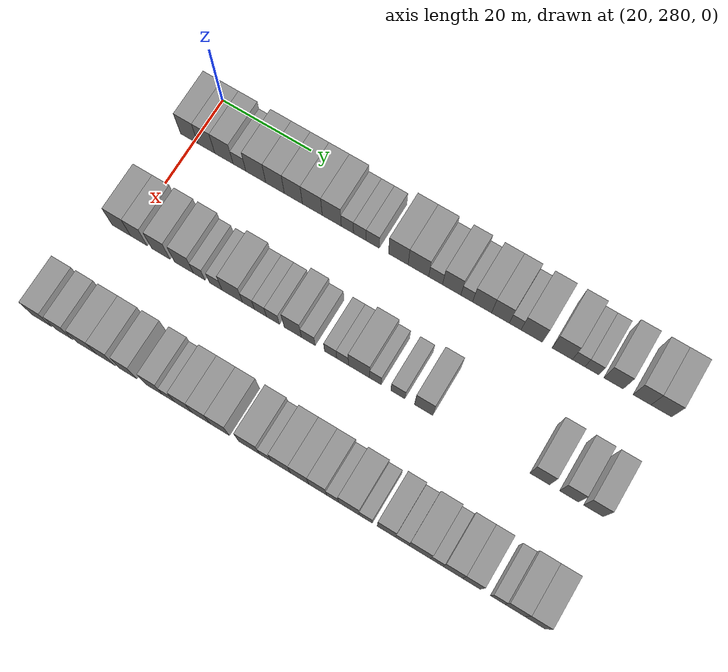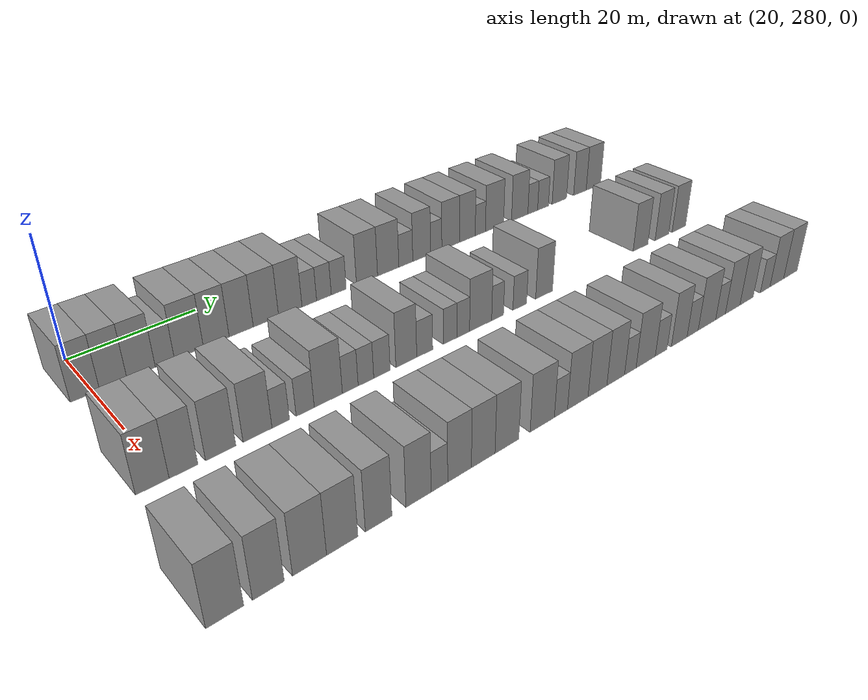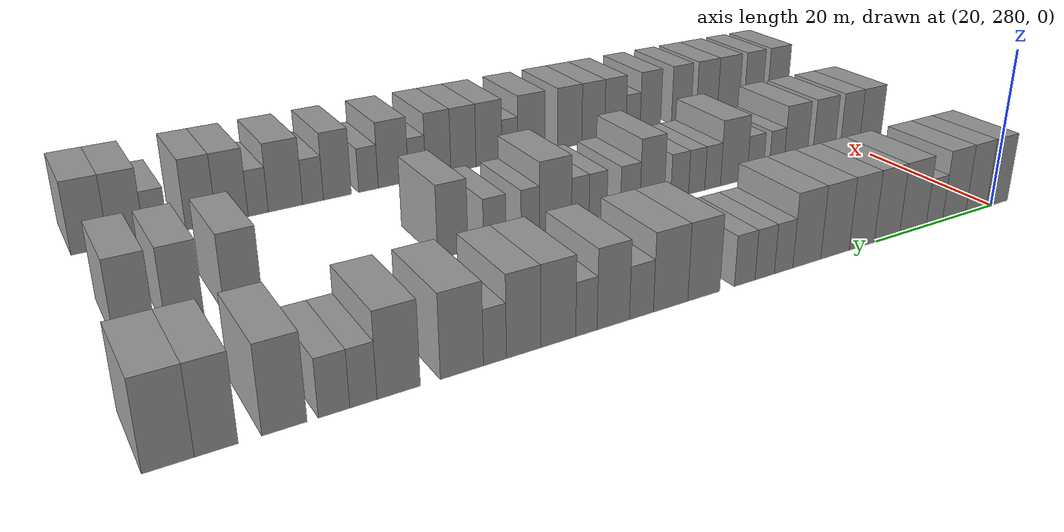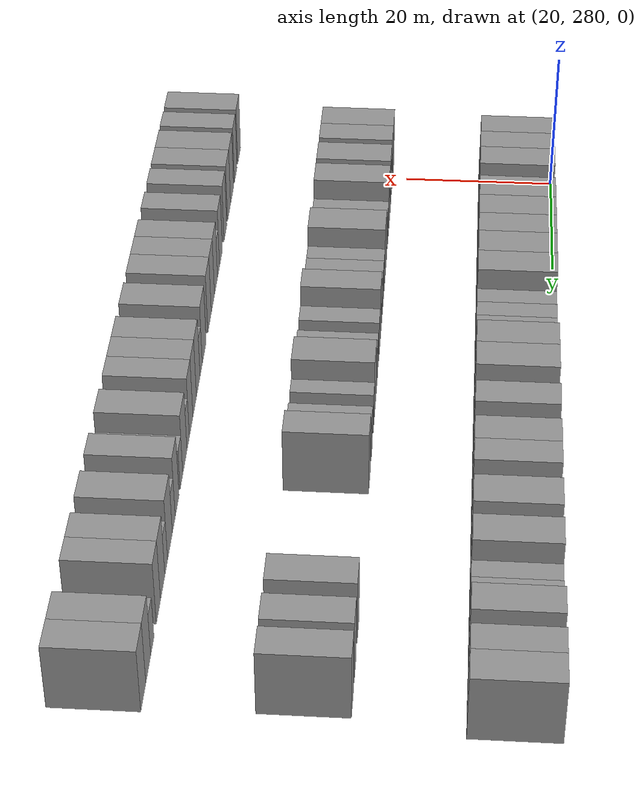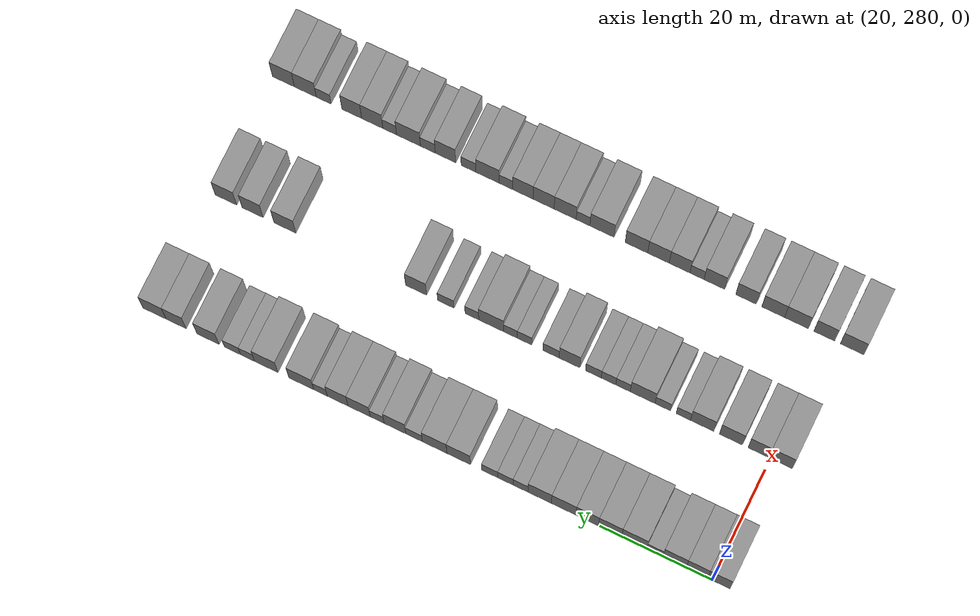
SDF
<sdf version="1.6">
 <world name="default">
  <model name="building_164">
   <static>1</static>
   <pose>25.0000 278.9140 0 0.000000 0.000000 0.000000</pose>
   <link name="link">
    <pose>0 0 4.50 0 0 0</pose>
    <collision name="collision"><geometry><box><size>10.0000 3.9760 9.0000</size></box></geometry></collision>
    <visual name="visual">
     <cast_shadows>0</cast_shadows>
     <geometry><box><size>10.0000 3.9760 9.0000</size></box></geometry>
     <material>
      <script>
       <uri>model://grey_wall/materials/scripts</uri>
       <uri>model://grey_wall/materials/textures</uri>
       <name>vrc/grey_wall</name>
      </script>
     </material>
    </visual>
   </link>
  </model>
  <model name="building_165">
   <static>1</static>
   <pose>25.0000 282.8122 0 0.000000 0.000000 0.000000</pose>
   <link name="link">
    <pose>0 0 4.50 0 0 0</pose>
    <collision name="collision"><geometry><box><size>10.0000 3.8205 9.0000</size></box></geometry></collision>
    <visual name="visual">
     <cast_shadows>0</cast_shadows>
     <geometry><box><size>10.0000 3.8205 9.0000</size></box></geometry>
     <material>
      <script>
       <uri>model://grey_wall/materials/scripts</uri>
       <uri>model://grey_wall/materials/textures</uri>
       <name>vrc/grey_wall</name>
      </script>
     </material>
    </visual>
   </link>
  </model>
  <model name="building_166">
   <static>1</static>
   <pose>25.0000 286.7843 0 0.000000 0.000000 0.000000</pose>
   <link name="link">
    <pose>0 0 4.50 0 0 0</pose>
    <collision name="collision"><geometry><box><size>10.0000 4.1235 9.0000</size></box></geometry></collision>
    <visual name="visual">
     <cast_shadows>0</cast_shadows>
     <geometry><box><size>10.0000 4.1235 9.0000</size></box></geometry>
     <material>
      <script>
       <uri>model://grey_wall/materials/scripts</uri>
       <uri>model://grey_wall/materials/textures</uri>
       <name>vrc/grey_wall</name>
      </script>
     </material>
    </visual>
   </link>
  </model>
  <model name="building_167">
   <static>1</static>
   <pose>25.0000 290.2773 0 0.000000 0.000000 0.000000</pose>
   <link name="link">
    <pose>0 0 3.00 0 0 0</pose>
    <collision name="collision"><geometry><box><size>10.0000 2.8625 6.0000</size></box></geometry></collision>
    <visual name="visual">
     <cast_shadows>0</cast_shadows>
     <geometry><box><size>10.0000 2.8625 6.0000</size></box></geometry>
     <material>
      <script>
       <uri>model://grey_wall/materials/scripts</uri>
       <uri>model://grey_wall/materials/textures</uri>
       <name>vrc/grey_wall</name>
      </script>
     </material>
    </visual>
   </link>
  </model>
  <model name="building_168">
   <static>1</static>
   <pose>25.0000 293.9492 0 0.000000 0.000000 0.000000</pose>
   <link name="link">
    <pose>0 0 4.50 0 0 0</pose>
    <collision name="collision"><geometry><box><size>10.0000 4.4813 9.0000</size></box></geometry></collision>
    <visual name="visual">
     <cast_shadows>0</cast_shadows>
     <geometry><box><size>10.0000 4.4813 9.0000</size></box></geometry>
     <material>
      <script>
       <uri>model://grey_wall/materials/scripts</uri>
       <uri>model://grey_wall/materials/textures</uri>
       <name>vrc/grey_wall</name>
      </script>
     </material>
    </visual>
   </link>
  </model>
  <model name="building_169">
   <static>1</static>
   <pose>25.0000 298.2594 0 0.000000 0.000000 0.000000</pose>
   <link name="link">
    <pose>0 0 4.50 0 0 0</pose>
    <collision name="collision"><geometry><box><size>10.0000 4.1392 9.0000</size></box></geometry></collision>
    <visual name="visual">
     <cast_shadows>0</cast_shadows>
     <geometry><box><size>10.0000 4.1392 9.0000</size></box></geometry>
     <material>
      <script>
       <uri>model://grey_wall/materials/scripts</uri>
       <uri>model://grey_wall/materials/textures</uri>
       <name>vrc/grey_wall</name>
      </script>
     </material>
    </visual>
   </link>
  </model>
  <model name="building_170">
   <static>1</static>
   <pose>25.0000 302.3332 0 0.000000 0.000000 0.000000</pose>
   <link name="link">
    <pose>0 0 4.50 0 0 0</pose>
    <collision name="collision"><geometry><box><size>10.0000 4.0084 9.0000</size></box></geometry></collision>
    <visual name="visual">
     <cast_shadows>0</cast_shadows>
     <geometry><box><size>10.0000 4.0084 9.0000</size></box></geometry>
     <material>
      <script>
       <uri>model://grey_wall/materials/scripts</uri>
       <uri>model://grey_wall/materials/textures</uri>
       <name>vrc/grey_wall</name>
      </script>
     </material>
    </visual>
   </link>
  </model>
  <model name="building_171">
   <static>1</static>
   <pose>25.0000 306.5236 0 0.000000 0.000000 0.000000</pose>
   <link name="link">
    <pose>0 0 4.50 0 0 0</pose>
    <collision name="collision"><geometry><box><size>10.0000 4.3724 9.0000</size></box></geometry></collision>
    <visual name="visual">
     <cast_shadows>0</cast_shadows>
     <geometry><box><size>10.0000 4.3724 9.0000</size></box></geometry>
     <material>
      <script>
       <uri>model://grey_wall/materials/scripts</uri>
       <uri>model://grey_wall/materials/textures</uri>
       <name>vrc/grey_wall</name>
      </script>
     </material>
    </visual>
   </link>
  </model>
  <model name="building_172">
   <static>1</static>
   <pose>25.0000 310.7991 0 0.000000 0.000000 0.000000</pose>
   <link name="link">
    <pose>0 0 4.50 0 0 0</pose>
    <collision name="collision"><geometry><box><size>10.0000 4.1786 9.0000</size></box></geometry></collision>
    <visual name="visual">
     <cast_shadows>0</cast_shadows>
     <geometry><box><size>10.0000 4.1786 9.0000</size></box></geometry>
     <material>
      <script>
       <uri>model://grey_wall/materials/scripts</uri>
       <uri>model://grey_wall/materials/textures</uri>
       <name>vrc/grey_wall</name>
      </script>
     </material>
    </visual>
   </link>
  </model>
  <model name="building_173">
   <static>1</static>
   <pose>25.0000 314.2296 0 0.000000 0.000000 0.000000</pose>
   <link name="link">
    <pose>0 0 3.00 0 0 0</pose>
    <collision name="collision"><geometry><box><size>10.0000 2.6823 6.0000</size></box></geometry></collision>
    <visual name="visual">
     <cast_shadows>0</cast_shadows>
     <geometry><box><size>10.0000 2.6823 6.0000</size></box></geometry>
     <material>
      <script>
       <uri>model://grey_wall/materials/scripts</uri>
       <uri>model://grey_wall/materials/textures</uri>
       <name>vrc/grey_wall</name>
      </script>
     </material>
    </visual>
   </link>
  </model>
  <model name="building_174">
   <static>1</static>
   <pose>25.0000 316.9485 0 0.000000 0.000000 0.000000</pose>
   <link name="link">
    <pose>0 0 3.00 0 0 0</pose>
    <collision name="collision"><geometry><box><size>10.0000 2.7555 6.0000</size></box></geometry></collision>
    <visual name="visual">
     <cast_shadows>0</cast_shadows>
     <geometry><box><size>10.0000 2.7555 6.0000</size></box></geometry>
     <material>
      <script>
       <uri>model://grey_wall/materials/scripts</uri>
       <uri>model://grey_wall/materials/textures</uri>
       <name>vrc/grey_wall</name>
      </script>
     </material>
    </visual>
   </link>
  </model>
  <model name="building_175">
   <static>1</static>
   <pose>25.0000 319.7554 0 0.000000 0.000000 0.000000</pose>
   <link name="link">
    <pose>0 0 3.00 0 0 0</pose>
    <collision name="collision"><geometry><box><size>10.0000 2.8583 6.0000</size></box></geometry></collision>
    <visual name="visual">
     <cast_shadows>0</cast_shadows>
     <geometry><box><size>10.0000 2.8583 6.0000</size></box></geometry>
     <material>
      <script>
       <uri>model://grey_wall/materials/scripts</uri>
       <uri>model://grey_wall/materials/textures</uri>
       <name>vrc/grey_wall</name>
      </script>
     </material>
    </visual>
   </link>
  </model>
  <model name="building_176">
   <static>1</static>
   <pose>25.0000 325.3029 0 0.000000 0.000000 0.000000</pose>
   <link name="link">
    <pose>0 0 4.50 0 0 0</pose>
    <collision name="collision"><geometry><box><size>10.0000 4.2367 9.0000</size></box></geometry></collision>
    <visual name="visual">
     <cast_shadows>0</cast_shadows>
     <geometry><box><size>10.0000 4.2367 9.0000</size></box></geometry>
     <material>
      <script>
       <uri>model://grey_wall/materials/scripts</uri>
       <uri>model://grey_wall/materials/textures</uri>
       <name>vrc/grey_wall</name>
      </script>
     </material>
    </visual>
   </link>
  </model>
  <model name="building_177">
   <static>1</static>
   <pose>25.0000 329.6273 0 0.000000 0.000000 0.000000</pose>
   <link name="link">
    <pose>0 0 4.50 0 0 0</pose>
    <collision name="collision"><geometry><box><size>10.0000 4.4122 9.0000</size></box></geometry></collision>
    <visual name="visual">
     <cast_shadows>0</cast_shadows>
     <geometry><box><size>10.0000 4.4122 9.0000</size></box></geometry>
     <material>
      <script>
       <uri>model://grey_wall/materials/scripts</uri>
       <uri>model://grey_wall/materials/textures</uri>
       <name>vrc/grey_wall</name>
      </script>
     </material>
    </visual>
   </link>
  </model>
  <model name="building_178">
   <static>1</static>
   <pose>25.0000 333.3196 0 0.000000 0.000000 0.000000</pose>
   <link name="link">
    <pose>0 0 3.00 0 0 0</pose>
    <collision name="collision"><geometry><box><size>10.0000 2.9724 6.0000</size></box></geometry></collision>
    <visual name="visual">
     <cast_shadows>0</cast_shadows>
     <geometry><box><size>10.0000 2.9724 6.0000</size></box></geometry>
     <material>
      <script>
       <uri>model://grey_wall/materials/scripts</uri>
       <uri>model://grey_wall/materials/textures</uri>
       <name>vrc/grey_wall</name>
      </script>
     </material>
    </visual>
   </link>
  </model>
  <model name="building_179">
   <static>1</static>
   <pose>25.0000 336.7559 0 0.000000 0.000000 0.000000</pose>
   <link name="link">
    <pose>0 0 4.50 0 0 0</pose>
    <collision name="collision"><geometry><box><size>10.0000 3.9002 9.0000</size></box></geometry></collision>
    <visual name="visual">
     <cast_shadows>0</cast_shadows>
     <geometry><box><size>10.0000 3.9002 9.0000</size></box></geometry>
     <material>
      <script>
       <uri>model://grey_wall/materials/scripts</uri>
       <uri>model://grey_wall/materials/textures</uri>
       <name>vrc/grey_wall</name>
      </script>
     </material>
    </visual>
   </link>
  </model>
  <model name="building_180">
   <static>1</static>
   <pose>25.0000 339.9572 0 0.000000 0.000000 0.000000</pose>
   <link name="link">
    <pose>0 0 3.00 0 0 0</pose>
    <collision name="collision"><geometry><box><size>10.0000 2.5024 6.0000</size></box></geometry></collision>
    <visual name="visual">
     <cast_shadows>0</cast_shadows>
     <geometry><box><size>10.0000 2.5024 6.0000</size></box></geometry>
     <material>
      <script>
       <uri>model://grey_wall/materials/scripts</uri>
       <uri>model://grey_wall/materials/textures</uri>
       <name>vrc/grey_wall</name>
      </script>
     </material>
    </visual>
   </link>
  </model>
  <model name="building_181">
   <static>1</static>
   <pose>25.0000 343.2161 0 0.000000 0.000000 0.000000</pose>
   <link name="link">
    <pose>0 0 4.50 0 0 0</pose>
    <collision name="collision"><geometry><box><size>10.0000 4.0153 9.0000</size></box></geometry></collision>
    <visual name="visual">
     <cast_shadows>0</cast_shadows>
     <geometry><box><size>10.0000 4.0153 9.0000</size></box></geometry>
     <material>
      <script>
       <uri>model://grey_wall/materials/scripts</uri>
       <uri>model://grey_wall/materials/textures</uri>
       <name>vrc/grey_wall</name>
      </script>
     </material>
    </visual>
   </link>
  </model>
  <model name="building_182">
   <static>1</static>
   <pose>25.0000 347.0987 0 0.000000 0.000000 0.000000</pose>
   <link name="link">
    <pose>0 0 4.50 0 0 0</pose>
    <collision name="collision"><geometry><box><size>10.0000 3.7500 9.0000</size></box></geometry></collision>
    <visual name="visual">
     <cast_shadows>0</cast_shadows>
     <geometry><box><size>10.0000 3.7500 9.0000</size></box></geometry>
     <material>
      <script>
       <uri>model://grey_wall/materials/scripts</uri>
       <uri>model://grey_wall/materials/textures</uri>
       <name>vrc/grey_wall</name>
      </script>
     </material>
    </visual>
   </link>
  </model>
  <model name="building_183">
   <static>1</static>
   <pose>25.0000 350.1979 0 0.000000 0.000000 0.000000</pose>
   <link name="link">
    <pose>0 0 3.00 0 0 0</pose>
    <collision name="collision"><geometry><box><size>10.0000 2.4484 6.0000</size></box></geometry></collision>
    <visual name="visual">
     <cast_shadows>0</cast_shadows>
     <geometry><box><size>10.0000 2.4484 6.0000</size></box></geometry>
     <material>
      <script>
       <uri>model://grey_wall/materials/scripts</uri>
       <uri>model://grey_wall/materials/textures</uri>
       <name>vrc/grey_wall</name>
      </script>
     </material>
    </visual>
   </link>
  </model>
  <model name="building_184">
   <static>1</static>
   <pose>25.0000 353.6634 0 0.000000 0.000000 0.000000</pose>
   <link name="link">
    <pose>0 0 4.50 0 0 0</pose>
    <collision name="collision"><geometry><box><size>10.0000 4.4824 9.0000</size></box></geometry></collision>
    <visual name="visual">
     <cast_shadows>0</cast_shadows>
     <geometry><box><size>10.0000 4.4824 9.0000</size></box></geometry>
     <material>
      <script>
       <uri>model://grey_wall/materials/scripts</uri>
       <uri>model://grey_wall/materials/textures</uri>
       <name>vrc/grey_wall</name>
      </script>
     </material>
    </visual>
   </link>
  </model>
  <model name="building_185">
   <static>1</static>
   <pose>25.0000 360.0152 0 0.000000 0.000000 0.000000</pose>
   <link name="link">
    <pose>0 0 4.50 0 0 0</pose>
    <collision name="collision"><geometry><box><size>10.0000 4.2213 9.0000</size></box></geometry></collision>
    <visual name="visual">
     <cast_shadows>0</cast_shadows>
     <geometry><box><size>10.0000 4.2213 9.0000</size></box></geometry>
     <material>
      <script>
       <uri>model://grey_wall/materials/scripts</uri>
       <uri>model://grey_wall/materials/textures</uri>
       <name>vrc/grey_wall</name>
      </script>
     </material>
    </visual>
   </link>
  </model>
  <model name="building_186">
   <static>1</static>
   <pose>25.0000 363.4134 0 0.000000 0.000000 0.000000</pose>
   <link name="link">
    <pose>0 0 3.00 0 0 0</pose>
    <collision name="collision"><geometry><box><size>10.0000 2.5751 6.0000</size></box></geometry></collision>
    <visual name="visual">
     <cast_shadows>0</cast_shadows>
     <geometry><box><size>10.0000 2.5751 6.0000</size></box></geometry>
     <material>
      <script>
       <uri>model://grey_wall/materials/scripts</uri>
       <uri>model://grey_wall/materials/textures</uri>
       <name>vrc/grey_wall</name>
      </script>
     </material>
    </visual>
   </link>
  </model>
  <model name="building_187">
   <static>1</static>
   <pose>25.0000 366.1536 0 0.000000 0.000000 0.000000</pose>
   <link name="link">
    <pose>0 0 3.00 0 0 0</pose>
    <collision name="collision"><geometry><box><size>10.0000 2.9054 6.0000</size></box></geometry></collision>
    <visual name="visual">
     <cast_shadows>0</cast_shadows>
     <geometry><box><size>10.0000 2.9054 6.0000</size></box></geometry>
     <material>
      <script>
       <uri>model://grey_wall/materials/scripts</uri>
       <uri>model://grey_wall/materials/textures</uri>
       <name>vrc/grey_wall</name>
      </script>
     </material>
    </visual>
   </link>
  </model>
  <model name="building_188">
   <static>1</static>
   <pose>25.0000 370.6013 0 0.000000 0.000000 0.000000</pose>
   <link name="link">
    <pose>0 0 4.50 0 0 0</pose>
    <collision name="collision"><geometry><box><size>10.0000 3.9900 9.0000</size></box></geometry></collision>
    <visual name="visual">
     <cast_shadows>0</cast_shadows>
     <geometry><box><size>10.0000 3.9900 9.0000</size></box></geometry>
     <material>
      <script>
       <uri>model://grey_wall/materials/scripts</uri>
       <uri>model://grey_wall/materials/textures</uri>
       <name>vrc/grey_wall</name>
      </script>
     </material>
    </visual>
   </link>
  </model>
  <model name="building_189">
   <static>1</static>
   <pose>25.0000 376.4126 0 0.000000 0.000000 0.000000</pose>
   <link name="link">
    <pose>0 0 4.50 0 0 0</pose>
    <collision name="collision"><geometry><box><size>10.0000 3.6328 9.0000</size></box></geometry></collision>
    <visual name="visual">
     <cast_shadows>0</cast_shadows>
     <geometry><box><size>10.0000 3.6328 9.0000</size></box></geometry>
     <material>
      <script>
       <uri>model://grey_wall/materials/scripts</uri>
       <uri>model://grey_wall/materials/textures</uri>
       <name>vrc/grey_wall</name>
      </script>
     </material>
    </visual>
   </link>
  </model>
  <model name="building_190">
   <static>1</static>
   <pose>25.0000 380.3347 0 0.000000 0.000000 0.000000</pose>
   <link name="link">
    <pose>0 0 4.50 0 0 0</pose>
    <collision name="collision"><geometry><box><size>10.0000 4.2114 9.0000</size></box></geometry></collision>
    <visual name="visual">
     <cast_shadows>0</cast_shadows>
     <geometry><box><size>10.0000 4.2114 9.0000</size></box></geometry>
     <material>
      <script>
       <uri>model://grey_wall/materials/scripts</uri>
       <uri>model://grey_wall/materials/textures</uri>
       <name>vrc/grey_wall</name>
      </script>
     </material>
    </visual>
   </link>
  </model>
  <model name="building_362">
   <static>1</static>
   <pose>47.0000 278.2323 0 0.000000 0.000000 0.000000</pose>
   <link name="link">
    <pose>0 0 4.50 0 0 0</pose>
    <collision name="collision"><geometry><box><size>10.0000 4.1802 9.0000</size></box></geometry></collision>
    <visual name="visual">
     <cast_shadows>0</cast_shadows>
     <geometry><box><size>10.0000 4.1802 9.0000</size></box></geometry>
     <material>
      <script>
       <uri>model://grey_wall/materials/scripts</uri>
       <uri>model://grey_wall/materials/textures</uri>
       <name>vrc/grey_wall</name>
      </script>
     </material>
    </visual>
   </link>
  </model>
  <model name="building_363">
   <static>1</static>
   <pose>47.0000 282.1758 0 0.000000 0.000000 0.000000</pose>
   <link name="link">
    <pose>0 0 4.50 0 0 0</pose>
    <collision name="collision"><geometry><box><size>10.0000 3.7068 9.0000</size></box></geometry></collision>
    <visual name="visual">
     <cast_shadows>0</cast_shadows>
     <geometry><box><size>10.0000 3.7068 9.0000</size></box></geometry>
     <material>
      <script>
       <uri>model://grey_wall/materials/scripts</uri>
       <uri>model://grey_wall/materials/textures</uri>
       <name>vrc/grey_wall</name>
      </script>
     </material>
    </visual>
   </link>
  </model>
  <model name="building_364">
   <static>1</static>
   <pose>47.0000 287.0910 0 0.000000 0.000000 0.000000</pose>
   <link name="link">
    <pose>0 0 4.50 0 0 0</pose>
    <collision name="collision"><geometry><box><size>10.0000 4.1236 9.0000</size></box></geometry></collision>
    <visual name="visual">
     <cast_shadows>0</cast_shadows>
     <geometry><box><size>10.0000 4.1236 9.0000</size></box></geometry>
     <material>
      <script>
       <uri>model://grey_wall/materials/scripts</uri>
       <uri>model://grey_wall/materials/textures</uri>
       <name>vrc/grey_wall</name>
      </script>
     </material>
    </visual>
   </link>
  </model>
  <model name="building_365">
   <static>1</static>
   <pose>47.0000 292.2251 0 0.000000 0.000000 0.000000</pose>
   <link name="link">
    <pose>0 0 4.50 0 0 0</pose>
    <collision name="collision"><geometry><box><size>10.0000 4.1446 9.0000</size></box></geometry></collision>
    <visual name="visual">
     <cast_shadows>0</cast_shadows>
     <geometry><box><size>10.0000 4.1446 9.0000</size></box></geometry>
     <material>
      <script>
       <uri>model://grey_wall/materials/scripts</uri>
       <uri>model://grey_wall/materials/textures</uri>
       <name>vrc/grey_wall</name>
      </script>
     </material>
    </visual>
   </link>
  </model>
  <model name="building_366">
   <static>1</static>
   <pose>47.0000 295.5887 0 0.000000 0.000000 0.000000</pose>
   <link name="link">
    <pose>0 0 3.00 0 0 0</pose>
    <collision name="collision"><geometry><box><size>10.0000 2.5825 6.0000</size></box></geometry></collision>
    <visual name="visual">
     <cast_shadows>0</cast_shadows>
     <geometry><box><size>10.0000 2.5825 6.0000</size></box></geometry>
     <material>
      <script>
       <uri>model://grey_wall/materials/scripts</uri>
       <uri>model://grey_wall/materials/textures</uri>
       <name>vrc/grey_wall</name>
      </script>
     </material>
    </visual>
   </link>
  </model>
  <model name="building_367">
   <static>1</static>
   <pose>47.0000 299.2667 0 0.000000 0.000000 0.000000</pose>
   <link name="link">
    <pose>0 0 3.00 0 0 0</pose>
    <collision name="collision"><geometry><box><size>10.0000 2.7736 6.0000</size></box></geometry></collision>
    <visual name="visual">
     <cast_shadows>0</cast_shadows>
     <geometry><box><size>10.0000 2.7736 6.0000</size></box></geometry>
     <material>
      <script>
       <uri>model://grey_wall/materials/scripts</uri>
       <uri>model://grey_wall/materials/textures</uri>
       <name>vrc/grey_wall</name>
      </script>
     </material>
    </visual>
   </link>
  </model>
  <model name="building_368">
   <static>1</static>
   <pose>47.0000 302.8865 0 0.000000 0.000000 0.000000</pose>
   <link name="link">
    <pose>0 0 4.50 0 0 0</pose>
    <collision name="collision"><geometry><box><size>10.0000 4.4659 9.0000</size></box></geometry></collision>
    <visual name="visual">
     <cast_shadows>0</cast_shadows>
     <geometry><box><size>10.0000 4.4659 9.0000</size></box></geometry>
     <material>
      <script>
       <uri>model://grey_wall/materials/scripts</uri>
       <uri>model://grey_wall/materials/textures</uri>
       <name>vrc/grey_wall</name>
      </script>
     </material>
    </visual>
   </link>
  </model>
  <model name="building_369">
   <static>1</static>
   <pose>47.0000 306.4107 0 0.000000 0.000000 0.000000</pose>
   <link name="link">
    <pose>0 0 3.00 0 0 0</pose>
    <collision name="collision"><geometry><box><size>10.0000 2.5827 6.0000</size></box></geometry></collision>
    <visual name="visual">
     <cast_shadows>0</cast_shadows>
     <geometry><box><size>10.0000 2.5827 6.0000</size></box></geometry>
     <material>
      <script>
       <uri>model://grey_wall/materials/scripts</uri>
       <uri>model://grey_wall/materials/textures</uri>
       <name>vrc/grey_wall</name>
      </script>
     </material>
    </visual>
   </link>
  </model>
  <model name="building_370">
   <static>1</static>
   <pose>47.0000 309.0109 0 0.000000 0.000000 0.000000</pose>
   <link name="link">
    <pose>0 0 3.00 0 0 0</pose>
    <collision name="collision"><geometry><box><size>10.0000 2.6177 6.0000</size></box></geometry></collision>
    <visual name="visual">
     <cast_shadows>0</cast_shadows>
     <geometry><box><size>10.0000 2.6177 6.0000</size></box></geometry>
     <material>
      <script>
       <uri>model://grey_wall/materials/scripts</uri>
       <uri>model://grey_wall/materials/textures</uri>
       <name>vrc/grey_wall</name>
      </script>
     </material>
    </visual>
   </link>
  </model>
  <model name="building_371">
   <static>1</static>
   <pose>47.0000 311.7317 0 0.000000 0.000000 0.000000</pose>
   <link name="link">
    <pose>0 0 3.00 0 0 0</pose>
    <collision name="collision"><geometry><box><size>10.0000 2.8239 6.0000</size></box></geometry></collision>
    <visual name="visual">
     <cast_shadows>0</cast_shadows>
     <geometry><box><size>10.0000 2.8239 6.0000</size></box></geometry>
     <material>
      <script>
       <uri>model://grey_wall/materials/scripts</uri>
       <uri>model://grey_wall/materials/textures</uri>
       <name>vrc/grey_wall</name>
      </script>
     </material>
    </visual>
   </link>
  </model>
  <model name="building_372">
   <static>1</static>
   <pose>47.0000 316.0126 0 0.000000 0.000000 0.000000</pose>
   <link name="link">
    <pose>0 0 4.50 0 0 0</pose>
    <collision name="collision"><geometry><box><size>10.0000 3.7378 9.0000</size></box></geometry></collision>
    <visual name="visual">
     <cast_shadows>0</cast_shadows>
     <geometry><box><size>10.0000 3.7378 9.0000</size></box></geometry>
     <material>
      <script>
       <uri>model://grey_wall/materials/scripts</uri>
       <uri>model://grey_wall/materials/textures</uri>
       <name>vrc/grey_wall</name>
      </script>
     </material>
    </visual>
   </link>
  </model>
  <model name="building_373">
   <static>1</static>
   <pose>47.0000 319.3524 0 0.000000 0.000000 0.000000</pose>
   <link name="link">
    <pose>0 0 3.00 0 0 0</pose>
    <collision name="collision"><geometry><box><size>10.0000 2.9419 6.0000</size></box></geometry></collision>
    <visual name="visual">
     <cast_shadows>0</cast_shadows>
     <geometry><box><size>10.0000 2.9419 6.0000</size></box></geometry>
     <material>
      <script>
       <uri>model://grey_wall/materials/scripts</uri>
       <uri>model://grey_wall/materials/textures</uri>
       <name>vrc/grey_wall</name>
      </script>
     </material>
    </visual>
   </link>
  </model>
  <model name="building_374">
   <static>1</static>
   <pose>47.0000 324.1175 0 0.000000 0.000000 0.000000</pose>
   <link name="link">
    <pose>0 0 3.00 0 0 0</pose>
    <collision name="collision"><geometry><box><size>10.0000 2.5882 6.0000</size></box></geometry></collision>
    <visual name="visual">
     <cast_shadows>0</cast_shadows>
     <geometry><box><size>10.0000 2.5882 6.0000</size></box></geometry>
     <material>
      <script>
       <uri>model://grey_wall/materials/scripts</uri>
       <uri>model://grey_wall/materials/textures</uri>
       <name>vrc/grey_wall</name>
      </script>
     </material>
    </visual>
   </link>
  </model>
  <model name="building_375">
   <static>1</static>
   <pose>47.0000 326.6675 0 0.000000 0.000000 0.000000</pose>
   <link name="link">
    <pose>0 0 3.00 0 0 0</pose>
    <collision name="collision"><geometry><box><size>10.0000 2.5119 6.0000</size></box></geometry></collision>
    <visual name="visual">
     <cast_shadows>0</cast_shadows>
     <geometry><box><size>10.0000 2.5119 6.0000</size></box></geometry>
     <material>
      <script>
       <uri>model://grey_wall/materials/scripts</uri>
       <uri>model://grey_wall/materials/textures</uri>
       <name>vrc/grey_wall</name>
      </script>
     </material>
    </visual>
   </link>
  </model>
  <model name="building_376">
   <static>1</static>
   <pose>47.0000 330.1559 0 0.000000 0.000000 0.000000</pose>
   <link name="link">
    <pose>0 0 4.50 0 0 0</pose>
    <collision name="collision"><geometry><box><size>10.0000 4.4648 9.0000</size></box></geometry></collision>
    <visual name="visual">
     <cast_shadows>0</cast_shadows>
     <geometry><box><size>10.0000 4.4648 9.0000</size></box></geometry>
     <material>
      <script>
       <uri>model://grey_wall/materials/scripts</uri>
       <uri>model://grey_wall/materials/textures</uri>
       <name>vrc/grey_wall</name>
      </script>
     </material>
    </visual>
   </link>
  </model>
  <model name="building_377">
   <static>1</static>
   <pose>47.0000 333.6206 0 0.000000 0.000000 0.000000</pose>
   <link name="link">
    <pose>0 0 3.00 0 0 0</pose>
    <collision name="collision"><geometry><box><size>10.0000 2.4645 6.0000</size></box></geometry></collision>
    <visual name="visual">
     <cast_shadows>0</cast_shadows>
     <geometry><box><size>10.0000 2.4645 6.0000</size></box></geometry>
     <material>
      <script>
       <uri>model://grey_wall/materials/scripts</uri>
       <uri>model://grey_wall/materials/textures</uri>
       <name>vrc/grey_wall</name>
      </script>
     </material>
    </visual>
   </link>
  </model>
  <model name="building_378">
   <static>1</static>
   <pose>47.0000 338.3340 0 0.000000 0.000000 0.000000</pose>
   <link name="link">
    <pose>0 0 3.00 0 0 0</pose>
    <collision name="collision"><geometry><box><size>10.0000 2.9623 6.0000</size></box></geometry></collision>
    <visual name="visual">
     <cast_shadows>0</cast_shadows>
     <geometry><box><size>10.0000 2.9623 6.0000</size></box></geometry>
     <material>
      <script>
       <uri>model://grey_wall/materials/scripts</uri>
       <uri>model://grey_wall/materials/textures</uri>
       <name>vrc/grey_wall</name>
      </script>
     </material>
    </visual>
   </link>
  </model>
  <model name="building_379">
   <static>1</static>
   <pose>47.0000 343.7207 0 0.000000 0.000000 0.000000</pose>
   <link name="link">
    <pose>0 0 4.50 0 0 0</pose>
    <collision name="collision"><geometry><box><size>10.0000 3.8110 9.0000</size></box></geometry></collision>
    <visual name="visual">
     <cast_shadows>0</cast_shadows>
     <geometry><box><size>10.0000 3.8110 9.0000</size></box></geometry>
     <material>
      <script>
       <uri>model://grey_wall/materials/scripts</uri>
       <uri>model://grey_wall/materials/textures</uri>
       <name>vrc/grey_wall</name>
      </script>
     </material>
    </visual>
   </link>
  </model>
  <model name="building_380">
   <static>1</static>
   <pose>47.0000 367.6133 0 0.000000 0.000000 0.000000</pose>
   <link name="link">
    <pose>0 0 4.50 0 0 0</pose>
    <collision name="collision"><geometry><box><size>10.0000 3.9914 9.0000</size></box></geometry></collision>
    <visual name="visual">
     <cast_shadows>0</cast_shadows>
     <geometry><box><size>10.0000 3.9914 9.0000</size></box></geometry>
     <material>
      <script>
       <uri>model://grey_wall/materials/scripts</uri>
       <uri>model://grey_wall/materials/textures</uri>
       <name>vrc/grey_wall</name>
      </script>
     </material>
    </visual>
   </link>
  </model>
  <model name="building_381">
   <static>1</static>
   <pose>47.0000 373.5285 0 0.000000 0.000000 0.000000</pose>
   <link name="link">
    <pose>0 0 4.50 0 0 0</pose>
    <collision name="collision"><geometry><box><size>10.0000 3.8389 9.0000</size></box></geometry></collision>
    <visual name="visual">
     <cast_shadows>0</cast_shadows>
     <geometry><box><size>10.0000 3.8389 9.0000</size></box></geometry>
     <material>
      <script>
       <uri>model://grey_wall/materials/scripts</uri>
       <uri>model://grey_wall/materials/textures</uri>
       <name>vrc/grey_wall</name>
      </script>
     </material>
    </visual>
   </link>
  </model>
  <model name="building_382">
   <static>1</static>
   <pose>47.0000 378.4087 0 0.000000 0.000000 0.000000</pose>
   <link name="link">
    <pose>0 0 4.50 0 0 0</pose>
    <collision name="collision"><geometry><box><size>10.0000 3.9216 9.0000</size></box></geometry></collision>
    <visual name="visual">
     <cast_shadows>0</cast_shadows>
     <geometry><box><size>10.0000 3.9216 9.0000</size></box></geometry>
     <material>
      <script>
       <uri>model://grey_wall/materials/scripts</uri>
       <uri>model://grey_wall/materials/textures</uri>
       <name>vrc/grey_wall</name>
      </script>
     </material>
    </visual>
   </link>
  </model>
  <model name="building_537">
   <static>1</static>
   <pose>69.0000 275.6578 0 0.000000 0.000000 0.000000</pose>
   <link name="link">
    <pose>0 0 4.50 0 0 0</pose>
    <collision name="collision"><geometry><box><size>10.0000 4.2117 9.0000</size></box></geometry></collision>
    <visual name="visual">
     <cast_shadows>0</cast_shadows>
     <geometry><box><size>10.0000 4.2117 9.0000</size></box></geometry>
     <material>
      <script>
       <uri>model://grey_wall/materials/scripts</uri>
       <uri>model://grey_wall/materials/textures</uri>
       <name>vrc/grey_wall</name>
      </script>
     </material>
    </visual>
   </link>
  </model>
  <model name="building_538">
   <static>1</static>
   <pose>69.0000 280.6283 0 0.000000 0.000000 0.000000</pose>
   <link name="link">
    <pose>0 0 4.50 0 0 0</pose>
    <collision name="collision"><geometry><box><size>10.0000 3.7292 9.0000</size></box></geometry></collision>
    <visual name="visual">
     <cast_shadows>0</cast_shadows>
     <geometry><box><size>10.0000 3.7292 9.0000</size></box></geometry>
     <material>
      <script>
       <uri>model://grey_wall/materials/scripts</uri>
       <uri>model://grey_wall/materials/textures</uri>
       <name>vrc/grey_wall</name>
      </script>
     </material>
    </visual>
   </link>
  </model>
  <model name="building_539">
   <static>1</static>
   <pose>69.0000 285.6185 0 0.000000 0.000000 0.000000</pose>
   <link name="link">
    <pose>0 0 4.50 0 0 0</pose>
    <collision name="collision"><geometry><box><size>10.0000 4.2511 9.0000</size></box></geometry></collision>
    <visual name="visual">
     <cast_shadows>0</cast_shadows>
     <geometry><box><size>10.0000 4.2511 9.0000</size></box></geometry>
     <material>
      <script>
       <uri>model://grey_wall/materials/scripts</uri>
       <uri>model://grey_wall/materials/textures</uri>
       <name>vrc/grey_wall</name>
      </script>
     </material>
    </visual>
   </link>
  </model>
  <model name="building_540">
   <static>1</static>
   <pose>69.0000 289.7958 0 0.000000 0.000000 0.000000</pose>
   <link name="link">
    <pose>0 0 4.50 0 0 0</pose>
    <collision name="collision"><geometry><box><size>10.0000 4.1037 9.0000</size></box></geometry></collision>
    <visual name="visual">
     <cast_shadows>0</cast_shadows>
     <geometry><box><size>10.0000 4.1037 9.0000</size></box></geometry>
     <material>
      <script>
       <uri>model://grey_wall/materials/scripts</uri>
       <uri>model://grey_wall/materials/textures</uri>
       <name>vrc/grey_wall</name>
      </script>
     </material>
    </visual>
   </link>
  </model>
  <model name="building_541">
   <static>1</static>
   <pose>69.0000 294.6865 0 0.000000 0.000000 0.000000</pose>
   <link name="link">
    <pose>0 0 4.50 0 0 0</pose>
    <collision name="collision"><geometry><box><size>10.0000 3.6777 9.0000</size></box></geometry></collision>
    <visual name="visual">
     <cast_shadows>0</cast_shadows>
     <geometry><box><size>10.0000 3.6777 9.0000</size></box></geometry>
     <material>
      <script>
       <uri>model://grey_wall/materials/scripts</uri>
       <uri>model://grey_wall/materials/textures</uri>
       <name>vrc/grey_wall</name>
      </script>
     </material>
    </visual>
   </link>
  </model>
  <model name="building_542">
   <static>1</static>
   <pose>69.0000 300.3839 0 0.000000 0.000000 0.000000</pose>
   <link name="link">
    <pose>0 0 4.50 0 0 0</pose>
    <collision name="collision"><geometry><box><size>10.0000 3.7170 9.0000</size></box></geometry></collision>
    <visual name="visual">
     <cast_shadows>0</cast_shadows>
     <geometry><box><size>10.0000 3.7170 9.0000</size></box></geometry>
     <material>
      <script>
       <uri>model://grey_wall/materials/scripts</uri>
       <uri>model://grey_wall/materials/textures</uri>
       <name>vrc/grey_wall</name>
      </script>
     </material>
    </visual>
   </link>
  </model>
  <model name="building_543">
   <static>1</static>
   <pose>69.0000 303.5073 0 0.000000 0.000000 0.000000</pose>
   <link name="link">
    <pose>0 0 3.00 0 0 0</pose>
    <collision name="collision"><geometry><box><size>10.0000 2.5298 6.0000</size></box></geometry></collision>
    <visual name="visual">
     <cast_shadows>0</cast_shadows>
     <geometry><box><size>10.0000 2.5298 6.0000</size></box></geometry>
     <material>
      <script>
       <uri>model://grey_wall/materials/scripts</uri>
       <uri>model://grey_wall/materials/textures</uri>
       <name>vrc/grey_wall</name>
      </script>
     </material>
    </visual>
   </link>
  </model>
  <model name="building_544">
   <static>1</static>
   <pose>69.0000 306.6435 0 0.000000 0.000000 0.000000</pose>
   <link name="link">
    <pose>0 0 4.50 0 0 0</pose>
    <collision name="collision"><geometry><box><size>10.0000 3.7425 9.0000</size></box></geometry></collision>
    <visual name="visual">
     <cast_shadows>0</cast_shadows>
     <geometry><box><size>10.0000 3.7425 9.0000</size></box></geometry>
     <material>
      <script>
       <uri>model://grey_wall/materials/scripts</uri>
       <uri>model://grey_wall/materials/textures</uri>
       <name>vrc/grey_wall</name>
      </script>
     </material>
    </visual>
   </link>
  </model>
  <model name="building_545">
   <static>1</static>
   <pose>69.0000 310.4552 0 0.000000 0.000000 0.000000</pose>
   <link name="link">
    <pose>0 0 4.50 0 0 0</pose>
    <collision name="collision"><geometry><box><size>10.0000 3.8809 9.0000</size></box></geometry></collision>
    <visual name="visual">
     <cast_shadows>0</cast_shadows>
     <geometry><box><size>10.0000 3.8809 9.0000</size></box></geometry>
     <material>
      <script>
       <uri>model://grey_wall/materials/scripts</uri>
       <uri>model://grey_wall/materials/textures</uri>
       <name>vrc/grey_wall</name>
      </script>
     </material>
    </visual>
   </link>
  </model>
  <model name="building_546">
   <static>1</static>
   <pose>69.0000 314.4306 0 0.000000 0.000000 0.000000</pose>
   <link name="link">
    <pose>0 0 4.50 0 0 0</pose>
    <collision name="collision"><geometry><box><size>10.0000 4.0698 9.0000</size></box></geometry></collision>
    <visual name="visual">
     <cast_shadows>0</cast_shadows>
     <geometry><box><size>10.0000 4.0698 9.0000</size></box></geometry>
     <material>
      <script>
       <uri>model://grey_wall/materials/scripts</uri>
       <uri>model://grey_wall/materials/textures</uri>
       <name>vrc/grey_wall</name>
      </script>
     </material>
    </visual>
   </link>
  </model>
  <model name="building_547">
   <static>1</static>
   <pose>69.0000 320.6702 0 0.000000 0.000000 0.000000</pose>
   <link name="link">
    <pose>0 0 4.50 0 0 0</pose>
    <collision name="collision"><geometry><box><size>10.0000 4.4095 9.0000</size></box></geometry></collision>
    <visual name="visual">
     <cast_shadows>0</cast_shadows>
     <geometry><box><size>10.0000 4.4095 9.0000</size></box></geometry>
     <material>
      <script>
       <uri>model://grey_wall/materials/scripts</uri>
       <uri>model://grey_wall/materials/textures</uri>
       <name>vrc/grey_wall</name>
      </script>
     </material>
    </visual>
   </link>
  </model>
  <model name="building_548">
   <static>1</static>
   <pose>69.0000 324.1139 0 0.000000 0.000000 0.000000</pose>
   <link name="link">
    <pose>0 0 3.00 0 0 0</pose>
    <collision name="collision"><geometry><box><size>10.0000 2.4778 6.0000</size></box></geometry></collision>
    <visual name="visual">
     <cast_shadows>0</cast_shadows>
     <geometry><box><size>10.0000 2.4778 6.0000</size></box></geometry>
     <material>
      <script>
       <uri>model://grey_wall/materials/scripts</uri>
       <uri>model://grey_wall/materials/textures</uri>
       <name>vrc/grey_wall</name>
      </script>
     </material>
    </visual>
   </link>
  </model>
  <model name="building_549">
   <static>1</static>
   <pose>69.0000 327.3515 0 0.000000 0.000000 0.000000</pose>
   <link name="link">
    <pose>0 0 4.50 0 0 0</pose>
    <collision name="collision"><geometry><box><size>10.0000 3.9974 9.0000</size></box></geometry></collision>
    <visual name="visual">
     <cast_shadows>0</cast_shadows>
     <geometry><box><size>10.0000 3.9974 9.0000</size></box></geometry>
     <material>
      <script>
       <uri>model://grey_wall/materials/scripts</uri>
       <uri>model://grey_wall/materials/textures</uri>
       <name>vrc/grey_wall</name>
      </script>
     </material>
    </visual>
   </link>
  </model>
  <model name="building_550">
   <static>1</static>
   <pose>69.0000 331.2489 0 0.000000 0.000000 0.000000</pose>
   <link name="link">
    <pose>0 0 4.50 0 0 0</pose>
    <collision name="collision"><geometry><box><size>10.0000 3.7974 9.0000</size></box></geometry></collision>
    <visual name="visual">
     <cast_shadows>0</cast_shadows>
     <geometry><box><size>10.0000 3.7974 9.0000</size></box></geometry>
     <material>
      <script>
       <uri>model://grey_wall/materials/scripts</uri>
       <uri>model://grey_wall/materials/textures</uri>
       <name>vrc/grey_wall</name>
      </script>
     </material>
    </visual>
   </link>
  </model>
  <model name="building_551">
   <static>1</static>
   <pose>69.0000 334.9976 0 0.000000 0.000000 0.000000</pose>
   <link name="link">
    <pose>0 0 4.50 0 0 0</pose>
    <collision name="collision"><geometry><box><size>10.0000 3.7001 9.0000</size></box></geometry></collision>
    <visual name="visual">
     <cast_shadows>0</cast_shadows>
     <geometry><box><size>10.0000 3.7001 9.0000</size></box></geometry>
     <material>
      <script>
       <uri>model://grey_wall/materials/scripts</uri>
       <uri>model://grey_wall/materials/textures</uri>
       <name>vrc/grey_wall</name>
      </script>
     </material>
    </visual>
   </link>
  </model>
  <model name="building_552">
   <static>1</static>
   <pose>69.0000 338.0884 0 0.000000 0.000000 0.000000</pose>
   <link name="link">
    <pose>0 0 3.00 0 0 0</pose>
    <collision name="collision"><geometry><box><size>10.0000 2.4815 6.0000</size></box></geometry></collision>
    <visual name="visual">
     <cast_shadows>0</cast_shadows>
     <geometry><box><size>10.0000 2.4815 6.0000</size></box></geometry>
     <material>
      <script>
       <uri>model://grey_wall/materials/scripts</uri>
       <uri>model://grey_wall/materials/textures</uri>
       <name>vrc/grey_wall</name>
      </script>
     </material>
    </visual>
   </link>
  </model>
  <model name="building_553">
   <static>1</static>
   <pose>69.0000 341.4541 0 0.000000 0.000000 0.000000</pose>
   <link name="link">
    <pose>0 0 4.50 0 0 0</pose>
    <collision name="collision"><geometry><box><size>10.0000 4.2499 9.0000</size></box></geometry></collision>
    <visual name="visual">
     <cast_shadows>0</cast_shadows>
     <geometry><box><size>10.0000 4.2499 9.0000</size></box></geometry>
     <material>
      <script>
       <uri>model://grey_wall/materials/scripts</uri>
       <uri>model://grey_wall/materials/textures</uri>
       <name>vrc/grey_wall</name>
      </script>
     </material>
    </visual>
   </link>
  </model>
  <model name="building_554">
   <static>1</static>
   <pose>69.0000 344.9214 0 0.000000 0.000000 0.000000</pose>
   <link name="link">
    <pose>0 0 3.00 0 0 0</pose>
    <collision name="collision"><geometry><box><size>10.0000 2.6848 6.0000</size></box></geometry></collision>
    <visual name="visual">
     <cast_shadows>0</cast_shadows>
     <geometry><box><size>10.0000 2.6848 6.0000</size></box></geometry>
     <material>
      <script>
       <uri>model://grey_wall/materials/scripts</uri>
       <uri>model://grey_wall/materials/textures</uri>
       <name>vrc/grey_wall</name>
      </script>
     </material>
    </visual>
   </link>
  </model>
  <model name="building_555">
   <static>1</static>
   <pose>69.0000 349.1263 0 0.000000 0.000000 0.000000</pose>
   <link name="link">
    <pose>0 0 4.50 0 0 0</pose>
    <collision name="collision"><geometry><box><size>10.0000 3.7250 9.0000</size></box></geometry></collision>
    <visual name="visual">
     <cast_shadows>0</cast_shadows>
     <geometry><box><size>10.0000 3.7250 9.0000</size></box></geometry>
     <material>
      <script>
       <uri>model://grey_wall/materials/scripts</uri>
       <uri>model://grey_wall/materials/textures</uri>
       <name>vrc/grey_wall</name>
      </script>
     </material>
    </visual>
   </link>
  </model>
  <model name="building_556">
   <static>1</static>
   <pose>69.0000 352.3457 0 0.000000 0.000000 0.000000</pose>
   <link name="link">
    <pose>0 0 3.00 0 0 0</pose>
    <collision name="collision"><geometry><box><size>10.0000 2.7136 6.0000</size></box></geometry></collision>
    <visual name="visual">
     <cast_shadows>0</cast_shadows>
     <geometry><box><size>10.0000 2.7136 6.0000</size></box></geometry>
     <material>
      <script>
       <uri>model://grey_wall/materials/scripts</uri>
       <uri>model://grey_wall/materials/textures</uri>
       <name>vrc/grey_wall</name>
      </script>
     </material>
    </visual>
   </link>
  </model>
  <model name="building_557">
   <static>1</static>
   <pose>69.0000 355.8936 0 0.000000 0.000000 0.000000</pose>
   <link name="link">
    <pose>0 0 4.50 0 0 0</pose>
    <collision name="collision"><geometry><box><size>10.0000 4.3823 9.0000</size></box></geometry></collision>
    <visual name="visual">
     <cast_shadows>0</cast_shadows>
     <geometry><box><size>10.0000 4.3823 9.0000</size></box></geometry>
     <material>
      <script>
       <uri>model://grey_wall/materials/scripts</uri>
       <uri>model://grey_wall/materials/textures</uri>
       <name>vrc/grey_wall</name>
      </script>
     </material>
    </visual>
   </link>
  </model>
  <model name="building_558">
   <static>1</static>
   <pose>69.0000 359.3390 0 0.000000 0.000000 0.000000</pose>
   <link name="link">
    <pose>0 0 3.00 0 0 0</pose>
    <collision name="collision"><geometry><box><size>10.0000 2.5085 6.0000</size></box></geometry></collision>
    <visual name="visual">
     <cast_shadows>0</cast_shadows>
     <geometry><box><size>10.0000 2.5085 6.0000</size></box></geometry>
     <material>
      <script>
       <uri>model://grey_wall/materials/scripts</uri>
       <uri>model://grey_wall/materials/textures</uri>
       <name>vrc/grey_wall</name>
      </script>
     </material>
    </visual>
   </link>
  </model>
  <model name="building_559">
   <static>1</static>
   <pose>69.0000 362.5326 0 0.000000 0.000000 0.000000</pose>
   <link name="link">
    <pose>0 0 4.50 0 0 0</pose>
    <collision name="collision"><geometry><box><size>10.0000 3.8786 9.0000</size></box></geometry></collision>
    <visual name="visual">
     <cast_shadows>0</cast_shadows>
     <geometry><box><size>10.0000 3.8786 9.0000</size></box></geometry>
     <material>
      <script>
       <uri>model://grey_wall/materials/scripts</uri>
       <uri>model://grey_wall/materials/textures</uri>
       <name>vrc/grey_wall</name>
      </script>
     </material>
    </visual>
   </link>
  </model>
  <model name="building_560">
   <static>1</static>
   <pose>69.0000 366.2817 0 0.000000 0.000000 0.000000</pose>
   <link name="link">
    <pose>0 0 4.50 0 0 0</pose>
    <collision name="collision"><geometry><box><size>10.0000 3.6197 9.0000</size></box></geometry></collision>
    <visual name="visual">
     <cast_shadows>0</cast_shadows>
     <geometry><box><size>10.0000 3.6197 9.0000</size></box></geometry>
     <material>
      <script>
       <uri>model://grey_wall/materials/scripts</uri>
       <uri>model://grey_wall/materials/textures</uri>
       <name>vrc/grey_wall</name>
      </script>
     </material>
    </visual>
   </link>
  </model>
  <model name="building_561">
   <static>1</static>
   <pose>69.0000 371.4518 0 0.000000 0.000000 0.000000</pose>
   <link name="link">
    <pose>0 0 3.00 0 0 0</pose>
    <collision name="collision"><geometry><box><size>10.0000 2.7205 6.0000</size></box></geometry></collision>
    <visual name="visual">
     <cast_shadows>0</cast_shadows>
     <geometry><box><size>10.0000 2.7205 6.0000</size></box></geometry>
     <material>
      <script>
       <uri>model://grey_wall/materials/scripts</uri>
       <uri>model://grey_wall/materials/textures</uri>
       <name>vrc/grey_wall</name>
      </script>
     </material>
    </visual>
   </link>
  </model>
  <model name="building_562">
   <static>1</static>
   <pose>69.0000 374.8202 0 0.000000 0.000000 0.000000</pose>
   <link name="link">
    <pose>0 0 4.50 0 0 0</pose>
    <collision name="collision"><geometry><box><size>10.0000 4.0164 9.0000</size></box></geometry></collision>
    <visual name="visual">
     <cast_shadows>0</cast_shadows>
     <geometry><box><size>10.0000 4.0164 9.0000</size></box></geometry>
     <material>
      <script>
       <uri>model://grey_wall/materials/scripts</uri>
       <uri>model://grey_wall/materials/textures</uri>
       <name>vrc/grey_wall</name>
      </script>
     </material>
    </visual>
   </link>
  </model>
  <model name="building_563">
   <static>1</static>
   <pose>69.0000 378.8585 0 0.000000 0.000000 0.000000</pose>
   <link name="link">
    <pose>0 0 4.50 0 0 0</pose>
    <collision name="collision"><geometry><box><size>10.0000 4.0601 9.0000</size></box></geometry></collision>
    <visual name="visual">
     <cast_shadows>0</cast_shadows>
     <geometry><box><size>10.0000 4.0601 9.0000</size></box></geometry>
     <material>
      <script>
       <uri>model://grey_wall/materials/scripts</uri>
       <uri>model://grey_wall/materials/textures</uri>
       <name>vrc/grey_wall</name>
      </script>
     </material>
    </visual>
   </link>
  </model>
 </world>
</sdf>
